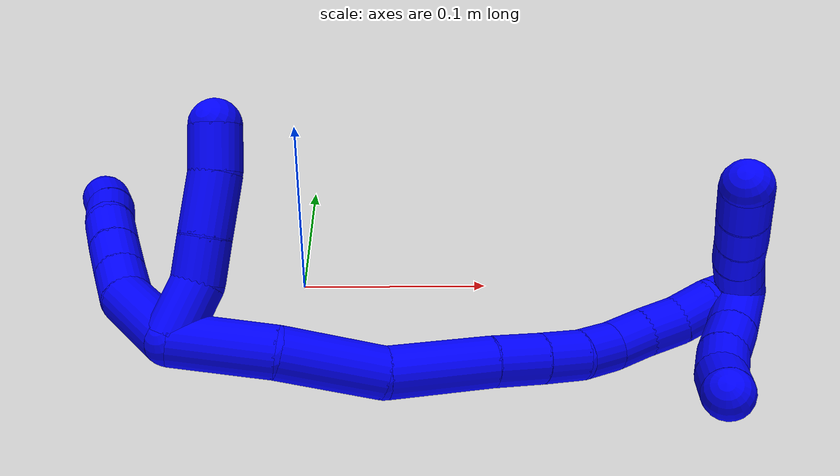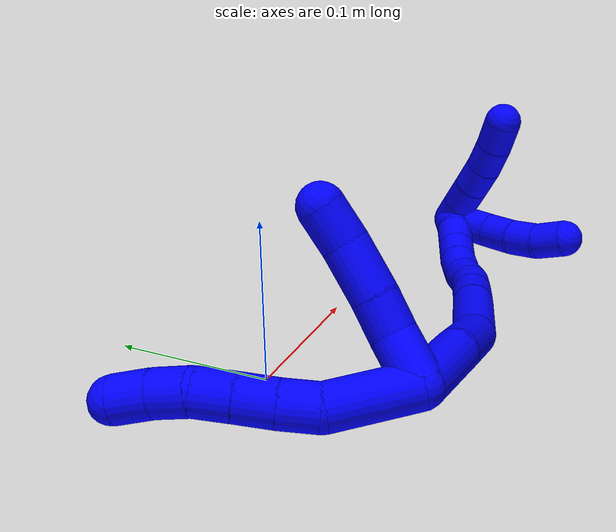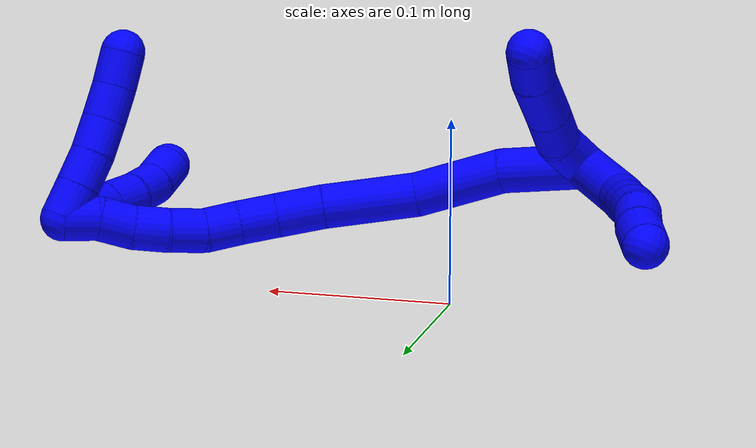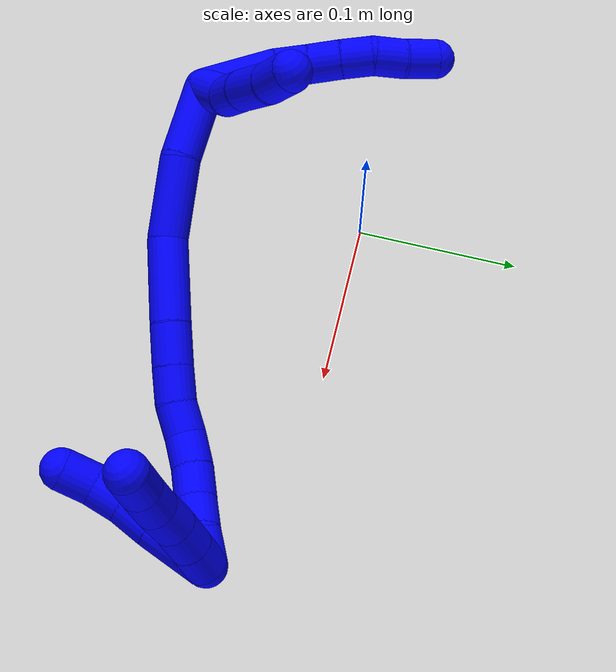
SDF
<sdf version="1.7">
 <world name="default">
  <model name="1">
   <static>0</static>
   <link name="1">
    <collision name="collision-cylinder-e_1_2_8">
     <pose>-0.019626 0.012046 -0.006758 -2.08207 -0.957559 1.45047</pose>
     <geometry><cylinder><radius>0.0125</radius><length>0.047998</length></cylinder></geometry>
     <surface>
      <friction><ode><mu>1.16</mu><mu2>1.16</mu2><slip1>0</slip1><slip2>0</slip2></ode></friction>
      <contact><ode><kp>1e+06</kp><kd>1</kd><max_vel>0</max_vel><min_depth>0.001</min_depth></ode></contact>
     </surface>
    </collision>
    <visual name="visual-cylinder-e_1_2_8">
     <pose>-0.019626 0.012046 -0.006758 -2.08207 -0.957559 1.45047</pose>
     <geometry><cylinder><radius>0.0125</radius><length>0.047998</length></cylinder></geometry>
     <material><ambient>0 0 1 1</ambient></material>
    </visual>
    <collision name="collision-cylinder-e_2_8_9">
     <pose>-0.045573 0.032121 -0.016127 -1.88521 -0.642572 0.859313</pose>
     <geometry><cylinder><radius>0.0125</radius><length>0.021095</length></cylinder></geometry>
     <surface>
      <friction><ode><mu>1.16</mu><mu2>1.16</mu2><slip1>0</slip1><slip2>0</slip2></ode></friction>
      <contact><ode><kp>1e+06</kp><kd>1</kd><max_vel>0</max_vel><min_depth>0.001</min_depth></ode></contact>
     </surface>
    </collision>
    <visual name="visual-cylinder-e_2_8_9">
     <pose>-0.045573 0.032121 -0.016127 -1.88521 -0.642572 0.859313</pose>
     <geometry><cylinder><radius>0.0125</radius><length>0.021095</length></cylinder></geometry>
     <material><ambient>0 0 1 1</ambient></material>
    </visual>
    <collision name="collision-cylinder-e_3_9_10">
     <pose>-0.057846 0.048271 -0.020825 -1.82235 -0.61745 0.780329</pose>
     <geometry><cylinder><radius>0.0125</radius><length>0.020564</length></cylinder></geometry>
     <surface>
      <friction><ode><mu>1.16</mu><mu2>1.16</mu2><slip1>0</slip1><slip2>0</slip2></ode></friction>
      <contact><ode><kp>1e+06</kp><kd>1</kd><max_vel>0</max_vel><min_depth>0.001</min_depth></ode></contact>
     </surface>
    </collision>
    <visual name="visual-cylinder-e_3_9_10">
     <pose>-0.057846 0.048271 -0.020825 -1.82235 -0.61745 0.780329</pose>
     <geometry><cylinder><radius>0.0125</radius><length>0.020564</length></cylinder></geometry>
     <material><ambient>0 0 1 1</ambient></material>
    </visual>
    <collision name="collision-cylinder-e_4_10_11">
     <pose>-0.06954 0.064354 -0.025323 -1.86475 -0.603991 0.794898</pose>
     <geometry><cylinder><radius>0.0125</radius><length>0.020218</length></cylinder></geometry>
     <surface>
      <friction><ode><mu>1.16</mu><mu2>1.16</mu2><slip1>0</slip1><slip2>0</slip2></ode></friction>
      <contact><ode><kp>1e+06</kp><kd>1</kd><max_vel>0</max_vel><min_depth>0.001</min_depth></ode></contact>
     </surface>
    </collision>
    <visual name="visual-cylinder-e_4_10_11">
     <pose>-0.06954 0.064354 -0.025323 -1.86475 -0.603991 0.794898</pose>
     <geometry><cylinder><radius>0.0125</radius><length>0.020218</length></cylinder></geometry>
     <material><ambient>0 0 1 1</ambient></material>
    </visual>
    <collision name="collision-cylinder-e_5_11_12">
     <pose>-0.08062 0.079215 -0.032629 -2.18802 -0.562962 1.02068</pose>
     <geometry><cylinder><radius>0.0125</radius><length>0.020005</length></cylinder></geometry>
     <surface>
      <friction><ode><mu>1.16</mu><mu2>1.16</mu2><slip1>0</slip1><slip2>0</slip2></ode></friction>
      <contact><ode><kp>1e+06</kp><kd>1</kd><max_vel>0</max_vel><min_depth>0.001</min_depth></ode></contact>
     </surface>
    </collision>
    <visual name="visual-cylinder-e_5_11_12">
     <pose>-0.08062 0.079215 -0.032629 -2.18802 -0.562962 1.02068</pose>
     <geometry><cylinder><radius>0.0125</radius><length>0.020005</length></cylinder></geometry>
     <material><ambient>0 0 1 1</ambient></material>
    </visual>
    <collision name="collision-cylinder-e_6_12_6">
     <pose>-0.092468 0.092179 -0.042218 -2.22928 -0.703804 1.28487</pose>
     <geometry><cylinder><radius>0.0125</radius><length>0.020121</length></cylinder></geometry>
     <surface>
      <friction><ode><mu>1.16</mu><mu2>1.16</mu2><slip1>0</slip1><slip2>0</slip2></ode></friction>
      <contact><ode><kp>1e+06</kp><kd>1</kd><max_vel>0</max_vel><min_depth>0.001</min_depth></ode></contact>
     </surface>
    </collision>
    <visual name="visual-cylinder-e_6_12_6">
     <pose>-0.092468 0.092179 -0.042218 -2.22928 -0.703804 1.28487</pose>
     <geometry><cylinder><radius>0.0125</radius><length>0.020121</length></cylinder></geometry>
     <material><ambient>0 0 1 1</ambient></material>
    </visual>
    <collision name="collision-cylinder-e_1_2_13">
     <pose>0.003785 0.01335 0.001779 -1.43835 0.273948 -0.24022</pose>
     <geometry><cylinder><radius>0.0125</radius><length>0.027979</length></cylinder></geometry>
     <surface>
      <friction><ode><mu>1.16</mu><mu2>1.16</mu2><slip1>0</slip1><slip2>0</slip2></ode></friction>
      <contact><ode><kp>1e+06</kp><kd>1</kd><max_vel>0</max_vel><min_depth>0.001</min_depth></ode></contact>
     </surface>
    </collision>
    <visual name="visual-cylinder-e_1_2_13">
     <pose>0.003785 0.01335 0.001779 -1.43835 0.273948 -0.24022</pose>
     <geometry><cylinder><radius>0.0125</radius><length>0.027979</length></cylinder></geometry>
     <material><ambient>0 0 1 1</ambient></material>
    </visual>
    <collision name="collision-cylinder-e_2_13_14">
     <pose>0.008698 0.036123 0.007957 -1.13397 0.108131 -0.06889</pose>
     <geometry><cylinder><radius>0.0125</radius><length>0.020921</length></cylinder></geometry>
     <surface>
      <friction><ode><mu>1.16</mu><mu2>1.16</mu2><slip1>0</slip1><slip2>0</slip2></ode></friction>
      <contact><ode><kp>1e+06</kp><kd>1</kd><max_vel>0</max_vel><min_depth>0.001</min_depth></ode></contact>
     </surface>
    </collision>
    <visual name="visual-cylinder-e_2_13_14">
     <pose>0.008698 0.036123 0.007957 -1.13397 0.108131 -0.06889</pose>
     <geometry><cylinder><radius>0.0125</radius><length>0.020921</length></cylinder></geometry>
     <material><ambient>0 0 1 1</ambient></material>
    </visual>
    <collision name="collision-cylinder-e_3_14_15">
     <pose>0.011041 0.059199 0.017707 -1.19732 0.082577 -0.056349</pose>
     <geometry><cylinder><radius>0.0125</radius><length>0.029427</length></cylinder></geometry>
     <surface>
      <friction><ode><mu>1.16</mu><mu2>1.16</mu2><slip1>0</slip1><slip2>0</slip2></ode></friction>
      <contact><ode><kp>1e+06</kp><kd>1</kd><max_vel>0</max_vel><min_depth>0.001</min_depth></ode></contact>
     </surface>
    </collision>
    <visual name="visual-cylinder-e_3_14_15">
     <pose>0.011041 0.059199 0.017707 -1.19732 0.082577 -0.056349</pose>
     <geometry><cylinder><radius>0.0125</radius><length>0.029427</length></cylinder></geometry>
     <material><ambient>0 0 1 1</ambient></material>
    </visual>
    <collision name="collision-cylinder-e_4_15_5">
     <pose>0.011607 0.082567 0.027811 -1.11568 -0.059829 0.037337</pose>
     <geometry><cylinder><radius>0.0125</radius><length>0.021672</length></cylinder></geometry>
     <surface>
      <friction><ode><mu>1.16</mu><mu2>1.16</mu2><slip1>0</slip1><slip2>0</slip2></ode></friction>
      <contact><ode><kp>1e+06</kp><kd>1</kd><max_vel>0</max_vel><min_depth>0.001</min_depth></ode></contact>
     </surface>
    </collision>
    <visual name="visual-cylinder-e_4_15_5">
     <pose>0.011607 0.082567 0.027811 -1.11568 -0.059829 0.037337</pose>
     <geometry><cylinder><radius>0.0125</radius><length>0.021672</length></cylinder></geometry>
     <material><ambient>0 0 1 1</ambient></material>
    </visual>
    <collision name="collision-cylinder-e_1_2_16">
     <pose>0.022118 0.002201 -0.008911 -2.89947 1.17742 -2.78114</pose>
     <geometry><cylinder><radius>0.0125</radius><length>0.047894</length></cylinder></geometry>
     <surface>
      <friction><ode><mu>1.16</mu><mu2>1.16</mu2><slip1>0</slip1><slip2>0</slip2></ode></friction>
      <contact><ode><kp>1e+06</kp><kd>1</kd><max_vel>0</max_vel><min_depth>0.001</min_depth></ode></contact>
     </surface>
    </collision>
    <visual name="visual-cylinder-e_1_2_16">
     <pose>0.022118 0.002201 -0.008911 -2.89947 1.17742 -2.78114</pose>
     <geometry><cylinder><radius>0.0125</radius><length>0.047894</length></cylinder></geometry>
     <material><ambient>0 0 1 1</ambient></material>
    </visual>
    <collision name="collision-cylinder-e_2_16_17">
     <pose>0.064743 0.006997 -0.032365 -2.96496 0.946539 -2.79916</pose>
     <geometry><cylinder><radius>0.0125</radius><length>0.050548</length></cylinder></geometry>
     <surface>
      <friction><ode><mu>1.16</mu><mu2>1.16</mu2><slip1>0</slip1><slip2>0</slip2></ode></friction>
      <contact><ode><kp>1e+06</kp><kd>1</kd><max_vel>0</max_vel><min_depth>0.001</min_depth></ode></contact>
     </surface>
    </collision>
    <visual name="visual-cylinder-e_2_16_17">
     <pose>0.064743 0.006997 -0.032365 -2.96496 0.946539 -2.79916</pose>
     <geometry><cylinder><radius>0.0125</radius><length>0.050548</length></cylinder></geometry>
     <material><ambient>0 0 1 1</ambient></material>
    </visual>
    <collision name="collision-cylinder-e_3_17_18">
     <pose>0.105816 0.019532 -0.060341 -2.5046 0.888444 -1.92988</pose>
     <geometry><cylinder><radius>0.0125</radius><length>0.052998</length></cylinder></geometry>
     <surface>
      <friction><ode><mu>1.16</mu><mu2>1.16</mu2><slip1>0</slip1><slip2>0</slip2></ode></friction>
      <contact><ode><kp>1e+06</kp><kd>1</kd><max_vel>0</max_vel><min_depth>0.001</min_depth></ode></contact>
     </surface>
    </collision>
    <visual name="visual-cylinder-e_3_17_18">
     <pose>0.105816 0.019532 -0.060341 -2.5046 0.888444 -1.92988</pose>
     <geometry><cylinder><radius>0.0125</radius><length>0.052998</length></cylinder></geometry>
     <material><ambient>0 0 1 1</ambient></material>
    </visual>
    <collision name="collision-cylinder-e_4_18_19">
     <pose>0.136218 0.034113 -0.081075 -2.57525 0.849449 -1.99811</pose>
     <geometry><cylinder><radius>0.0125</radius><length>0.026199</length></cylinder></geometry>
     <surface>
      <friction><ode><mu>1.16</mu><mu2>1.16</mu2><slip1>0</slip1><slip2>0</slip2></ode></friction>
      <contact><ode><kp>1e+06</kp><kd>1</kd><max_vel>0</max_vel><min_depth>0.001</min_depth></ode></contact>
     </surface>
    </collision>
    <visual name="visual-cylinder-e_4_18_19">
     <pose>0.136218 0.034113 -0.081075 -2.57525 0.849449 -1.99811</pose>
     <geometry><cylinder><radius>0.0125</radius><length>0.026199</length></cylinder></geometry>
     <material><ambient>0 0 1 1</ambient></material>
    </visual>
    <collision name="collision-cylinder-e_5_19_20">
     <pose>0.154133 0.04291 -0.094585 -2.55191 0.824357 -1.92741</pose>
     <geometry><cylinder><radius>0.0125</radius><length>0.022009</length></cylinder></geometry>
     <surface>
      <friction><ode><mu>1.16</mu><mu2>1.16</mu2><slip1>0</slip1><slip2>0</slip2></ode></friction>
      <contact><ode><kp>1e+06</kp><kd>1</kd><max_vel>0</max_vel><min_depth>0.001</min_depth></ode></contact>
     </surface>
    </collision>
    <visual name="visual-cylinder-e_5_19_20">
     <pose>0.154133 0.04291 -0.094585 -2.55191 0.824357 -1.92741</pose>
     <geometry><cylinder><radius>0.0125</radius><length>0.022009</length></cylinder></geometry>
     <material><ambient>0 0 1 1</ambient></material>
    </visual>
    <collision name="collision-cylinder-e_6_20_21">
     <pose>0.168259 0.052338 -0.106785 -2.41975 0.648548 -1.45513</pose>
     <geometry><cylinder><radius>0.0125</radius><length>0.020024</length></cylinder></geometry>
     <surface>
      <friction><ode><mu>1.16</mu><mu2>1.16</mu2><slip1>0</slip1><slip2>0</slip2></ode></friction>
      <contact><ode><kp>1e+06</kp><kd>1</kd><max_vel>0</max_vel><min_depth>0.001</min_depth></ode></contact>
     </surface>
    </collision>
    <visual name="visual-cylinder-e_6_20_21">
     <pose>0.168259 0.052338 -0.106785 -2.41975 0.648548 -1.45513</pose>
     <geometry><cylinder><radius>0.0125</radius><length>0.020024</length></cylinder></geometry>
     <material><ambient>0 0 1 1</ambient></material>
    </visual>
    <collision name="collision-cylinder-e_7_21_22">
     <pose>0.181335 0.063679 -0.116855 -2.16284 0.765565 -1.29468</pose>
     <geometry><cylinder><radius>0.0125</radius><length>0.020286</length></cylinder></geometry>
     <surface>
      <friction><ode><mu>1.16</mu><mu2>1.16</mu2><slip1>0</slip1><slip2>0</slip2></ode></friction>
      <contact><ode><kp>1e+06</kp><kd>1</kd><max_vel>0</max_vel><min_depth>0.001</min_depth></ode></contact>
     </surface>
    </collision>
    <visual name="visual-cylinder-e_7_21_22">
     <pose>0.181335 0.063679 -0.116855 -2.16284 0.765565 -1.29468</pose>
     <geometry><cylinder><radius>0.0125</radius><length>0.020286</length></cylinder></geometry>
     <material><ambient>0 0 1 1</ambient></material>
    </visual>
    <collision name="collision-cylinder-e_8_22_23">
     <pose>0.196063 0.075225 -0.124236 -2.11296 0.877717 -1.38638</pose>
     <geometry><cylinder><radius>0.0125</radius><length>0.020018</length></cylinder></geometry>
     <surface>
      <friction><ode><mu>1.16</mu><mu2>1.16</mu2><slip1>0</slip1><slip2>0</slip2></ode></friction>
      <contact><ode><kp>1e+06</kp><kd>1</kd><max_vel>0</max_vel><min_depth>0.001</min_depth></ode></contact>
     </surface>
    </collision>
    <visual name="visual-cylinder-e_8_22_23">
     <pose>0.196063 0.075225 -0.124236 -2.11296 0.877717 -1.38638</pose>
     <geometry><cylinder><radius>0.0125</radius><length>0.020018</length></cylinder></geometry>
     <material><ambient>0 0 1 1</ambient></material>
    </visual>
    <collision name="collision-cylinder-e_9_23_24">
     <pose>0.211321 0.08704 -0.129201 -1.82777 0.856551 -1.06904</pose>
     <geometry><cylinder><radius>0.0125</radius><length>0.020006</length></cylinder></geometry>
     <surface>
      <friction><ode><mu>1.16</mu><mu2>1.16</mu2><slip1>0</slip1><slip2>0</slip2></ode></friction>
      <contact><ode><kp>1e+06</kp><kd>1</kd><max_vel>0</max_vel><min_depth>0.001</min_depth></ode></contact>
     </surface>
    </collision>
    <visual name="visual-cylinder-e_9_23_24">
     <pose>0.211321 0.08704 -0.129201 -1.82777 0.856551 -1.06904</pose>
     <geometry><cylinder><radius>0.0125</radius><length>0.020006</length></cylinder></geometry>
     <material><ambient>0 0 1 1</ambient></material>
    </visual>
    <collision name="collision-cylinder-e_10_24_1">
     <pose>0.225914 0.099118 -0.135079 -2.20375 0.779327 -1.36236</pose>
     <geometry><cylinder><radius>0.0125</radius><length>0.020019</length></cylinder></geometry>
     <surface>
      <friction><ode><mu>1.16</mu><mu2>1.16</mu2><slip1>0</slip1><slip2>0</slip2></ode></friction>
      <contact><ode><kp>1e+06</kp><kd>1</kd><max_vel>0</max_vel><min_depth>0.001</min_depth></ode></contact>
     </surface>
    </collision>
    <visual name="visual-cylinder-e_10_24_1">
     <pose>0.225914 0.099118 -0.135079 -2.20375 0.779327 -1.36236</pose>
     <geometry><cylinder><radius>0.0125</radius><length>0.020019</length></cylinder></geometry>
     <material><ambient>0 0 1 1</ambient></material>
    </visual>
    <collision name="collision-cylinder-e_1_1_25">
     <pose>0.232063 0.088782 -0.1293 1.0148 -0.046752 -0.025995</pose>
     <geometry><cylinder><radius>0.0125</radius><length>0.037899</length></cylinder></geometry>
     <surface>
      <friction><ode><mu>1.16</mu><mu2>1.16</mu2><slip1>0</slip1><slip2>0</slip2></ode></friction>
      <contact><ode><kp>1e+06</kp><kd>1</kd><max_vel>0</max_vel><min_depth>0.001</min_depth></ode></contact>
     </surface>
    </collision>
    <visual name="visual-cylinder-e_1_1_25">
     <pose>0.232063 0.088782 -0.1293 1.0148 -0.046752 -0.025995</pose>
     <geometry><cylinder><radius>0.0125</radius><length>0.037899</length></cylinder></geometry>
     <material><ambient>0 0 1 1</ambient></material>
    </visual>
    <collision name="collision-cylinder-e_2_25_26">
     <pose>0.23016 0.063936 -0.113168 0.959771 -0.094725 -0.049328</pose>
     <geometry><cylinder><radius>0.0125</radius><length>0.021508</length></cylinder></geometry>
     <surface>
      <friction><ode><mu>1.16</mu><mu2>1.16</mu2><slip1>0</slip1><slip2>0</slip2></ode></friction>
      <contact><ode><kp>1e+06</kp><kd>1</kd><max_vel>0</max_vel><min_depth>0.001</min_depth></ode></contact>
     </surface>
    </collision>
    <visual name="visual-cylinder-e_2_25_26">
     <pose>0.23016 0.063936 -0.113168 0.959771 -0.094725 -0.049328</pose>
     <geometry><cylinder><radius>0.0125</radius><length>0.021508</length></cylinder></geometry>
     <material><ambient>0 0 1 1</ambient></material>
    </visual>
    <collision name="collision-cylinder-e_3_26_27">
     <pose>0.229624 0.047153 -0.101038 0.929133 0.048044 0.02408</pose>
     <geometry><cylinder><radius>0.0125</radius><length>0.020031</length></cylinder></geometry>
     <surface>
      <friction><ode><mu>1.16</mu><mu2>1.16</mu2><slip1>0</slip1><slip2>0</slip2></ode></friction>
      <contact><ode><kp>1e+06</kp><kd>1</kd><max_vel>0</max_vel><min_depth>0.001</min_depth></ode></contact>
     </surface>
    </collision>
    <visual name="visual-cylinder-e_3_26_27">
     <pose>0.229624 0.047153 -0.101038 0.929133 0.048044 0.02408</pose>
     <geometry><cylinder><radius>0.0125</radius><length>0.020031</length></cylinder></geometry>
     <material><ambient>0 0 1 1</ambient></material>
    </visual>
    <collision name="collision-cylinder-e_4_27_4">
     <pose>0.232363 0.032309 -0.087705 0.748964 0.221459 0.087342</pose>
     <geometry><cylinder><radius>0.0125</radius><length>0.020562</length></cylinder></geometry>
     <surface>
      <friction><ode><mu>1.16</mu><mu2>1.16</mu2><slip1>0</slip1><slip2>0</slip2></ode></friction>
      <contact><ode><kp>1e+06</kp><kd>1</kd><max_vel>0</max_vel><min_depth>0.001</min_depth></ode></contact>
     </surface>
    </collision>
    <visual name="visual-cylinder-e_4_27_4">
     <pose>0.232363 0.032309 -0.087705 0.748964 0.221459 0.087342</pose>
     <geometry><cylinder><radius>0.0125</radius><length>0.020562</length></cylinder></geometry>
     <material><ambient>0 0 1 1</ambient></material>
    </visual>
    <collision name="collision-cylinder-e_1_1_28">
     <pose>0.232994 0.104412 -0.129301 0.044716 0.004532 0.000101</pose>
     <geometry><cylinder><radius>0.0125</radius><length>0.02</length></cylinder></geometry>
     <surface>
      <friction><ode><mu>1.16</mu><mu2>1.16</mu2><slip1>0</slip1><slip2>0</slip2></ode></friction>
      <contact><ode><kp>1e+06</kp><kd>1</kd><max_vel>0</max_vel><min_depth>0.001</min_depth></ode></contact>
     </surface>
    </collision>
    <visual name="visual-cylinder-e_1_1_28">
     <pose>0.232994 0.104412 -0.129301 0.044716 0.004532 0.000101</pose>
     <geometry><cylinder><radius>0.0125</radius><length>0.02</length></cylinder></geometry>
     <material><ambient>0 0 1 1</ambient></material>
    </visual>
    <collision name="collision-cylinder-e_2_28_29">
     <pose>0.233223 0.103511 -0.109323 0.045418 0.018371 0.000417</pose>
     <geometry><cylinder><radius>0.0125</radius><length>0.02</length></cylinder></geometry>
     <surface>
      <friction><ode><mu>1.16</mu><mu2>1.16</mu2><slip1>0</slip1><slip2>0</slip2></ode></friction>
      <contact><ode><kp>1e+06</kp><kd>1</kd><max_vel>0</max_vel><min_depth>0.001</min_depth></ode></contact>
     </surface>
    </collision>
    <visual name="visual-cylinder-e_2_28_29">
     <pose>0.233223 0.103511 -0.109323 0.045418 0.018371 0.000417</pose>
     <geometry><cylinder><radius>0.0125</radius><length>0.02</length></cylinder></geometry>
     <material><ambient>0 0 1 1</ambient></material>
    </visual>
    <collision name="collision-cylinder-e_3_29_30">
     <pose>0.234532 0.102998 -0.089398 0.006012 0.112826 0.00034</pose>
     <geometry><cylinder><radius>0.0125</radius><length>0.02</length></cylinder></geometry>
     <surface>
      <friction><ode><mu>1.16</mu><mu2>1.16</mu2><slip1>0</slip1><slip2>0</slip2></ode></friction>
      <contact><ode><kp>1e+06</kp><kd>1</kd><max_vel>0</max_vel><min_depth>0.001</min_depth></ode></contact>
     </surface>
    </collision>
    <visual name="visual-cylinder-e_3_29_30">
     <pose>0.234532 0.102998 -0.089398 0.006012 0.112826 0.00034</pose>
     <geometry><cylinder><radius>0.0125</radius><length>0.02</length></cylinder></geometry>
     <material><ambient>0 0 1 1</ambient></material>
    </visual>
    <collision name="collision-cylinder-e_4_30_31">
     <pose>0.236442 0.1038 -0.06953 -0.086608 0.078446 -0.003401</pose>
     <geometry><cylinder><radius>0.0125</radius><length>0.02</length></cylinder></geometry>
     <surface>
      <friction><ode><mu>1.16</mu><mu2>1.16</mu2><slip1>0</slip1><slip2>0</slip2></ode></friction>
      <contact><ode><kp>1e+06</kp><kd>1</kd><max_vel>0</max_vel><min_depth>0.001</min_depth></ode></contact>
     </surface>
    </collision>
    <visual name="visual-cylinder-e_4_30_31">
     <pose>0.236442 0.1038 -0.06953 -0.086608 0.078446 -0.003401</pose>
     <geometry><cylinder><radius>0.0125</radius><length>0.02</length></cylinder></geometry>
     <material><ambient>0 0 1 1</ambient></material>
    </visual>
    <collision name="collision-cylinder-e_5_31_3">
     <pose>0.238129 0.106392 -0.049791 -0.174582 0.090479 -0.007923</pose>
     <geometry><cylinder><radius>0.0125</radius><length>0.02</length></cylinder></geometry>
     <surface>
      <friction><ode><mu>1.16</mu><mu2>1.16</mu2><slip1>0</slip1><slip2>0</slip2></ode></friction>
      <contact><ode><kp>1e+06</kp><kd>1</kd><max_vel>0</max_vel><min_depth>0.001</min_depth></ode></contact>
     </surface>
    </collision>
    <visual name="visual-cylinder-e_5_31_3">
     <pose>0.238129 0.106392 -0.049791 -0.174582 0.090479 -0.007923</pose>
     <geometry><cylinder><radius>0.0125</radius><length>0.02</length></cylinder></geometry>
     <material><ambient>0 0 1 1</ambient></material>
    </visual>
    <collision name="collision-sphere-3">
     <pose>0.239033 0.108122 -0.039983 0 -0 0</pose>
     <geometry><sphere><radius>0.0125</radius></sphere></geometry>
     <surface>
      <friction><ode><mu>1.16</mu><mu2>1.16</mu2><slip1>0</slip1><slip2>0</slip2></ode></friction>
      <contact><ode><kp>1e+06</kp><kd>1</kd><max_vel>0</max_vel><min_depth>0.001</min_depth></ode></contact>
     </surface>
    </collision>
    <visual name="visual-sphere-3">
     <pose>0.239033 0.108122 -0.039983 0 -0 0</pose>
     <geometry><sphere><radius>0.0125</radius></sphere></geometry>
     <material><ambient>0 0 1 1</ambient></material>
    </visual>
    <collision name="collision-sphere-31">
     <pose>0.237226 0.104663 -0.059598 0 -0 0</pose>
     <geometry><sphere><radius>0.0125</radius></sphere></geometry>
     <surface>
      <friction><ode><mu>1.16</mu><mu2>1.16</mu2><slip1>0</slip1><slip2>0</slip2></ode></friction>
      <contact><ode><kp>1e+06</kp><kd>1</kd><max_vel>0</max_vel><min_depth>0.001</min_depth></ode></contact>
     </surface>
    </collision>
    <visual name="visual-sphere-31">
     <pose>0.237226 0.104663 -0.059598 0 -0 0</pose>
     <geometry><sphere><radius>0.0125</radius></sphere></geometry>
     <material><ambient>0 0 1 1</ambient></material>
    </visual>
    <collision name="collision-sphere-30">
     <pose>0.235658 0.102938 -0.079462 0 -0 0</pose>
     <geometry><sphere><radius>0.0125</radius></sphere></geometry>
     <surface>
      <friction><ode><mu>1.16</mu><mu2>1.16</mu2><slip1>0</slip1><slip2>0</slip2></ode></friction>
      <contact><ode><kp>1e+06</kp><kd>1</kd><max_vel>0</max_vel><min_depth>0.001</min_depth></ode></contact>
     </surface>
    </collision>
    <visual name="visual-sphere-30">
     <pose>0.235658 0.102938 -0.079462 0 -0 0</pose>
     <geometry><sphere><radius>0.0125</radius></sphere></geometry>
     <material><ambient>0 0 1 1</ambient></material>
    </visual>
    <collision name="collision-sphere-29">
     <pose>0.233407 0.103057 -0.099335 0 -0 0</pose>
     <geometry><sphere><radius>0.0125</radius></sphere></geometry>
     <surface>
      <friction><ode><mu>1.16</mu><mu2>1.16</mu2><slip1>0</slip1><slip2>0</slip2></ode></friction>
      <contact><ode><kp>1e+06</kp><kd>1</kd><max_vel>0</max_vel><min_depth>0.001</min_depth></ode></contact>
     </surface>
    </collision>
    <visual name="visual-sphere-29">
     <pose>0.233407 0.103057 -0.099335 0 -0 0</pose>
     <geometry><sphere><radius>0.0125</radius></sphere></geometry>
     <material><ambient>0 0 1 1</ambient></material>
    </visual>
    <collision name="collision-sphere-28">
     <pose>0.233039 0.103965 -0.119311 0 -0 0</pose>
     <geometry><sphere><radius>0.0125</radius></sphere></geometry>
     <surface>
      <friction><ode><mu>1.16</mu><mu2>1.16</mu2><slip1>0</slip1><slip2>0</slip2></ode></friction>
      <contact><ode><kp>1e+06</kp><kd>1</kd><max_vel>0</max_vel><min_depth>0.001</min_depth></ode></contact>
     </surface>
    </collision>
    <visual name="visual-sphere-28">
     <pose>0.233039 0.103965 -0.119311 0 -0 0</pose>
     <geometry><sphere><radius>0.0125</radius></sphere></geometry>
     <material><ambient>0 0 1 1</ambient></material>
    </visual>
    <collision name="collision-sphere-4">
     <pose>0.234622 0.02548 -0.080359 0 -0 0</pose>
     <geometry><sphere><radius>0.0125</radius></sphere></geometry>
     <surface>
      <friction><ode><mu>1.16</mu><mu2>1.16</mu2><slip1>0</slip1><slip2>0</slip2></ode></friction>
      <contact><ode><kp>1e+06</kp><kd>1</kd><max_vel>0</max_vel><min_depth>0.001</min_depth></ode></contact>
     </surface>
    </collision>
    <visual name="visual-sphere-4">
     <pose>0.234622 0.02548 -0.080359 0 -0 0</pose>
     <geometry><sphere><radius>0.0125</radius></sphere></geometry>
     <material><ambient>0 0 1 1</ambient></material>
    </visual>
    <collision name="collision-sphere-27">
     <pose>0.230105 0.039139 -0.095051 0 -0 0</pose>
     <geometry><sphere><radius>0.0125</radius></sphere></geometry>
     <surface>
      <friction><ode><mu>1.16</mu><mu2>1.16</mu2><slip1>0</slip1><slip2>0</slip2></ode></friction>
      <contact><ode><kp>1e+06</kp><kd>1</kd><max_vel>0</max_vel><min_depth>0.001</min_depth></ode></contact>
     </surface>
    </collision>
    <visual name="visual-sphere-27">
     <pose>0.230105 0.039139 -0.095051 0 -0 0</pose>
     <geometry><sphere><radius>0.0125</radius></sphere></geometry>
     <material><ambient>0 0 1 1</ambient></material>
    </visual>
    <collision name="collision-sphere-26">
     <pose>0.229143 0.055167 -0.107026 0 -0 0</pose>
     <geometry><sphere><radius>0.0125</radius></sphere></geometry>
     <surface>
      <friction><ode><mu>1.16</mu><mu2>1.16</mu2><slip1>0</slip1><slip2>0</slip2></ode></friction>
      <contact><ode><kp>1e+06</kp><kd>1</kd><max_vel>0</max_vel><min_depth>0.001</min_depth></ode></contact>
     </surface>
    </collision>
    <visual name="visual-sphere-26">
     <pose>0.229143 0.055167 -0.107026 0 -0 0</pose>
     <geometry><sphere><radius>0.0125</radius></sphere></geometry>
     <material><ambient>0 0 1 1</ambient></material>
    </visual>
    <collision name="collision-sphere-25">
     <pose>0.231177 0.072704 -0.11931 0 -0 0</pose>
     <geometry><sphere><radius>0.0125</radius></sphere></geometry>
     <surface>
      <friction><ode><mu>1.16</mu><mu2>1.16</mu2><slip1>0</slip1><slip2>0</slip2></ode></friction>
      <contact><ode><kp>1e+06</kp><kd>1</kd><max_vel>0</max_vel><min_depth>0.001</min_depth></ode></contact>
     </surface>
    </collision>
    <visual name="visual-sphere-25">
     <pose>0.231177 0.072704 -0.11931 0 -0 0</pose>
     <geometry><sphere><radius>0.0125</radius></sphere></geometry>
     <material><ambient>0 0 1 1</ambient></material>
    </visual>
    <collision name="collision-sphere-1">
     <pose>0.232949 0.104859 -0.139291 0 -0 0</pose>
     <geometry><sphere><radius>0.0125</radius></sphere></geometry>
     <surface>
      <friction><ode><mu>1.16</mu><mu2>1.16</mu2><slip1>0</slip1><slip2>0</slip2></ode></friction>
      <contact><ode><kp>1e+06</kp><kd>1</kd><max_vel>0</max_vel><min_depth>0.001</min_depth></ode></contact>
     </surface>
    </collision>
    <visual name="visual-sphere-1">
     <pose>0.232949 0.104859 -0.139291 0 -0 0</pose>
     <geometry><sphere><radius>0.0125</radius></sphere></geometry>
     <material><ambient>0 0 1 1</ambient></material>
    </visual>
    <collision name="collision-sphere-24">
     <pose>0.218879 0.093377 -0.130867 0 -0 0</pose>
     <geometry><sphere><radius>0.0125</radius></sphere></geometry>
     <surface>
      <friction><ode><mu>1.16</mu><mu2>1.16</mu2><slip1>0</slip1><slip2>0</slip2></ode></friction>
      <contact><ode><kp>1e+06</kp><kd>1</kd><max_vel>0</max_vel><min_depth>0.001</min_depth></ode></contact>
     </surface>
    </collision>
    <visual name="visual-sphere-24">
     <pose>0.218879 0.093377 -0.130867 0 -0 0</pose>
     <geometry><sphere><radius>0.0125</radius></sphere></geometry>
     <material><ambient>0 0 1 1</ambient></material>
    </visual>
    <collision name="collision-sphere-23">
     <pose>0.203763 0.080703 -0.127536 0 -0 0</pose>
     <geometry><sphere><radius>0.0125</radius></sphere></geometry>
     <surface>
      <friction><ode><mu>1.16</mu><mu2>1.16</mu2><slip1>0</slip1><slip2>0</slip2></ode></friction>
      <contact><ode><kp>1e+06</kp><kd>1</kd><max_vel>0</max_vel><min_depth>0.001</min_depth></ode></contact>
     </surface>
    </collision>
    <visual name="visual-sphere-23">
     <pose>0.203763 0.080703 -0.127536 0 -0 0</pose>
     <geometry><sphere><radius>0.0125</radius></sphere></geometry>
     <material><ambient>0 0 1 1</ambient></material>
    </visual>
    <collision name="collision-sphere-22">
     <pose>0.188364 0.069747 -0.120936 0 -0 0</pose>
     <geometry><sphere><radius>0.0125</radius></sphere></geometry>
     <surface>
      <friction><ode><mu>1.16</mu><mu2>1.16</mu2><slip1>0</slip1><slip2>0</slip2></ode></friction>
      <contact><ode><kp>1e+06</kp><kd>1</kd><max_vel>0</max_vel><min_depth>0.001</min_depth></ode></contact>
     </surface>
    </collision>
    <visual name="visual-sphere-22">
     <pose>0.188364 0.069747 -0.120936 0 -0 0</pose>
     <geometry><sphere><radius>0.0125</radius></sphere></geometry>
     <material><ambient>0 0 1 1</ambient></material>
    </visual>
    <collision name="collision-sphere-21">
     <pose>0.174306 0.05761 -0.112774 0 -0 0</pose>
     <geometry><sphere><radius>0.0125</radius></sphere></geometry>
     <surface>
      <friction><ode><mu>1.16</mu><mu2>1.16</mu2><slip1>0</slip1><slip2>0</slip2></ode></friction>
      <contact><ode><kp>1e+06</kp><kd>1</kd><max_vel>0</max_vel><min_depth>0.001</min_depth></ode></contact>
     </surface>
    </collision>
    <visual name="visual-sphere-21">
     <pose>0.174306 0.05761 -0.112774 0 -0 0</pose>
     <geometry><sphere><radius>0.0125</radius></sphere></geometry>
     <material><ambient>0 0 1 1</ambient></material>
    </visual>
    <collision name="collision-sphere-12">
     <pose>-0.085958 0.086113 -0.037525 0 -0 0</pose>
     <geometry><sphere><radius>0.0125</radius></sphere></geometry>
     <surface>
      <friction><ode><mu>1.16</mu><mu2>1.16</mu2><slip1>0</slip1><slip2>0</slip2></ode></friction>
      <contact><ode><kp>1e+06</kp><kd>1</kd><max_vel>0</max_vel><min_depth>0.001</min_depth></ode></contact>
     </surface>
    </collision>
    <visual name="visual-sphere-12">
     <pose>-0.085958 0.086113 -0.037525 0 -0 0</pose>
     <geometry><sphere><radius>0.0125</radius></sphere></geometry>
     <material><ambient>0 0 1 1</ambient></material>
    </visual>
    <collision name="collision-sphere-11">
     <pose>-0.075281 0.072317 -0.027733 0 -0 0</pose>
     <geometry><sphere><radius>0.0125</radius></sphere></geometry>
     <surface>
      <friction><ode><mu>1.16</mu><mu2>1.16</mu2><slip1>0</slip1><slip2>0</slip2></ode></friction>
      <contact><ode><kp>1e+06</kp><kd>1</kd><max_vel>0</max_vel><min_depth>0.001</min_depth></ode></contact>
     </surface>
    </collision>
    <visual name="visual-sphere-11">
     <pose>-0.075281 0.072317 -0.027733 0 -0 0</pose>
     <geometry><sphere><radius>0.0125</radius></sphere></geometry>
     <material><ambient>0 0 1 1</ambient></material>
    </visual>
    <collision name="collision-sphere-10">
     <pose>-0.063799 0.05639 -0.022912 0 -0 0</pose>
     <geometry><sphere><radius>0.0125</radius></sphere></geometry>
     <surface>
      <friction><ode><mu>1.16</mu><mu2>1.16</mu2><slip1>0</slip1><slip2>0</slip2></ode></friction>
      <contact><ode><kp>1e+06</kp><kd>1</kd><max_vel>0</max_vel><min_depth>0.001</min_depth></ode></contact>
     </surface>
    </collision>
    <visual name="visual-sphere-10">
     <pose>-0.063799 0.05639 -0.022912 0 -0 0</pose>
     <geometry><sphere><radius>0.0125</radius></sphere></geometry>
     <material><ambient>0 0 1 1</ambient></material>
    </visual>
    <collision name="collision-sphere-9">
     <pose>-0.051894 0.040151 -0.018738 0 -0 0</pose>
     <geometry><sphere><radius>0.0125</radius></sphere></geometry>
     <surface>
      <friction><ode><mu>1.16</mu><mu2>1.16</mu2><slip1>0</slip1><slip2>0</slip2></ode></friction>
      <contact><ode><kp>1e+06</kp><kd>1</kd><max_vel>0</max_vel><min_depth>0.001</min_depth></ode></contact>
     </surface>
    </collision>
    <visual name="visual-sphere-9">
     <pose>-0.051894 0.040151 -0.018738 0 -0 0</pose>
     <geometry><sphere><radius>0.0125</radius></sphere></geometry>
     <material><ambient>0 0 1 1</ambient></material>
    </visual>
    <collision name="collision-sphere-2">
     <geometry><sphere><radius>0.0125</radius></sphere></geometry>
     <surface>
      <friction><ode><mu>1.16</mu><mu2>1.16</mu2><slip1>0</slip1><slip2>0</slip2></ode></friction>
      <contact><ode><kp>1e+06</kp><kd>1</kd><max_vel>0</max_vel><min_depth>0.001</min_depth></ode></contact>
     </surface>
    </collision>
    <visual name="visual-sphere-2">
     <geometry><sphere><radius>0.0125</radius></sphere></geometry>
     <material><ambient>0 0 1 1</ambient></material>
    </visual>
    <collision name="collision-sphere-19">
     <pose>0.146054 0.038754 -0.088375 0 -0 0</pose>
     <geometry><sphere><radius>0.0125</radius></sphere></geometry>
     <surface>
      <friction><ode><mu>1.16</mu><mu2>1.16</mu2><slip1>0</slip1><slip2>0</slip2></ode></friction>
      <contact><ode><kp>1e+06</kp><kd>1</kd><max_vel>0</max_vel><min_depth>0.001</min_depth></ode></contact>
     </surface>
    </collision>
    <visual name="visual-sphere-19">
     <pose>0.146054 0.038754 -0.088375 0 -0 0</pose>
     <geometry><sphere><radius>0.0125</radius></sphere></geometry>
     <material><ambient>0 0 1 1</ambient></material>
    </visual>
    <collision name="collision-sphere-8">
     <pose>-0.039253 0.024091 -0.013516 0 -0 0</pose>
     <geometry><sphere><radius>0.0125</radius></sphere></geometry>
     <surface>
      <friction><ode><mu>1.16</mu><mu2>1.16</mu2><slip1>0</slip1><slip2>0</slip2></ode></friction>
      <contact><ode><kp>1e+06</kp><kd>1</kd><max_vel>0</max_vel><min_depth>0.001</min_depth></ode></contact>
     </surface>
    </collision>
    <visual name="visual-sphere-8">
     <pose>-0.039253 0.024091 -0.013516 0 -0 0</pose>
     <geometry><sphere><radius>0.0125</radius></sphere></geometry>
     <material><ambient>0 0 1 1</ambient></material>
    </visual>
    <collision name="collision-sphere-6">
     <pose>-0.098978 0.098246 -0.046911 0 -0 0</pose>
     <geometry><sphere><radius>0.0125</radius></sphere></geometry>
     <surface>
      <friction><ode><mu>1.16</mu><mu2>1.16</mu2><slip1>0</slip1><slip2>0</slip2></ode></friction>
      <contact><ode><kp>1e+06</kp><kd>1</kd><max_vel>0</max_vel><min_depth>0.001</min_depth></ode></contact>
     </surface>
    </collision>
    <visual name="visual-sphere-6">
     <pose>-0.098978 0.098246 -0.046911 0 -0 0</pose>
     <geometry><sphere><radius>0.0125</radius></sphere></geometry>
     <material><ambient>0 0 1 1</ambient></material>
    </visual>
    <collision name="collision-sphere-13">
     <pose>0.007569 0.0267 0.003557 0 -0 0</pose>
     <geometry><sphere><radius>0.0125</radius></sphere></geometry>
     <surface>
      <friction><ode><mu>1.16</mu><mu2>1.16</mu2><slip1>0</slip1><slip2>0</slip2></ode></friction>
      <contact><ode><kp>1e+06</kp><kd>1</kd><max_vel>0</max_vel><min_depth>0.001</min_depth></ode></contact>
     </surface>
    </collision>
    <visual name="visual-sphere-13">
     <pose>0.007569 0.0267 0.003557 0 -0 0</pose>
     <geometry><sphere><radius>0.0125</radius></sphere></geometry>
     <material><ambient>0 0 1 1</ambient></material>
    </visual>
    <collision name="collision-sphere-14">
     <pose>0.009827 0.045546 0.012357 0 -0 0</pose>
     <geometry><sphere><radius>0.0125</radius></sphere></geometry>
     <surface>
      <friction><ode><mu>1.16</mu><mu2>1.16</mu2><slip1>0</slip1><slip2>0</slip2></ode></friction>
      <contact><ode><kp>1e+06</kp><kd>1</kd><max_vel>0</max_vel><min_depth>0.001</min_depth></ode></contact>
     </surface>
    </collision>
    <visual name="visual-sphere-14">
     <pose>0.009827 0.045546 0.012357 0 -0 0</pose>
     <geometry><sphere><radius>0.0125</radius></sphere></geometry>
     <material><ambient>0 0 1 1</ambient></material>
    </visual>
    <collision name="collision-sphere-15">
     <pose>0.012254 0.072852 0.023057 0 -0 0</pose>
     <geometry><sphere><radius>0.0125</radius></sphere></geometry>
     <surface>
      <friction><ode><mu>1.16</mu><mu2>1.16</mu2><slip1>0</slip1><slip2>0</slip2></ode></friction>
      <contact><ode><kp>1e+06</kp><kd>1</kd><max_vel>0</max_vel><min_depth>0.001</min_depth></ode></contact>
     </surface>
    </collision>
    <visual name="visual-sphere-15">
     <pose>0.012254 0.072852 0.023057 0 -0 0</pose>
     <geometry><sphere><radius>0.0125</radius></sphere></geometry>
     <material><ambient>0 0 1 1</ambient></material>
    </visual>
    <collision name="collision-sphere-5">
     <pose>0.010959 0.092283 0.032566 0 -0 0</pose>
     <geometry><sphere><radius>0.0125</radius></sphere></geometry>
     <surface>
      <friction><ode><mu>1.16</mu><mu2>1.16</mu2><slip1>0</slip1><slip2>0</slip2></ode></friction>
      <contact><ode><kp>1e+06</kp><kd>1</kd><max_vel>0</max_vel><min_depth>0.001</min_depth></ode></contact>
     </surface>
    </collision>
    <visual name="visual-sphere-5">
     <pose>0.010959 0.092283 0.032566 0 -0 0</pose>
     <geometry><sphere><radius>0.0125</radius></sphere></geometry>
     <material><ambient>0 0 1 1</ambient></material>
    </visual>
    <collision name="collision-sphere-16">
     <pose>0.044236 0.004402 -0.017823 0 -0 0</pose>
     <geometry><sphere><radius>0.0125</radius></sphere></geometry>
     <surface>
      <friction><ode><mu>1.16</mu><mu2>1.16</mu2><slip1>0</slip1><slip2>0</slip2></ode></friction>
      <contact><ode><kp>1e+06</kp><kd>1</kd><max_vel>0</max_vel><min_depth>0.001</min_depth></ode></contact>
     </surface>
    </collision>
    <visual name="visual-sphere-16">
     <pose>0.044236 0.004402 -0.017823 0 -0 0</pose>
     <geometry><sphere><radius>0.0125</radius></sphere></geometry>
     <material><ambient>0 0 1 1</ambient></material>
    </visual>
    <collision name="collision-sphere-17">
     <pose>0.08525 0.009593 -0.046908 0 -0 0</pose>
     <geometry><sphere><radius>0.0125</radius></sphere></geometry>
     <surface>
      <friction><ode><mu>1.16</mu><mu2>1.16</mu2><slip1>0</slip1><slip2>0</slip2></ode></friction>
      <contact><ode><kp>1e+06</kp><kd>1</kd><max_vel>0</max_vel><min_depth>0.001</min_depth></ode></contact>
     </surface>
    </collision>
    <visual name="visual-sphere-17">
     <pose>0.08525 0.009593 -0.046908 0 -0 0</pose>
     <geometry><sphere><radius>0.0125</radius></sphere></geometry>
     <material><ambient>0 0 1 1</ambient></material>
    </visual>
    <collision name="collision-sphere-18">
     <pose>0.126381 0.029471 -0.073775 0 -0 0</pose>
     <geometry><sphere><radius>0.0125</radius></sphere></geometry>
     <surface>
      <friction><ode><mu>1.16</mu><mu2>1.16</mu2><slip1>0</slip1><slip2>0</slip2></ode></friction>
      <contact><ode><kp>1e+06</kp><kd>1</kd><max_vel>0</max_vel><min_depth>0.001</min_depth></ode></contact>
     </surface>
    </collision>
    <visual name="visual-sphere-18">
     <pose>0.126381 0.029471 -0.073775 0 -0 0</pose>
     <geometry><sphere><radius>0.0125</radius></sphere></geometry>
     <material><ambient>0 0 1 1</ambient></material>
    </visual>
    <collision name="collision-sphere-20">
     <pose>0.162211 0.047065 -0.100796 0 -0 0</pose>
     <geometry><sphere><radius>0.0125</radius></sphere></geometry>
     <surface>
      <friction><ode><mu>1.16</mu><mu2>1.16</mu2><slip1>0</slip1><slip2>0</slip2></ode></friction>
      <contact><ode><kp>1e+06</kp><kd>1</kd><max_vel>0</max_vel><min_depth>0.001</min_depth></ode></contact>
     </surface>
    </collision>
    <visual name="visual-sphere-20">
     <pose>0.162211 0.047065 -0.100796 0 -0 0</pose>
     <geometry><sphere><radius>0.0125</radius></sphere></geometry>
     <material><ambient>0 0 1 1</ambient></material>
    </visual>
    <inertial>
     <pose>0.101527 0.052432 -0.058169 0 -0 0</pose>
     <mass>0.75</mass>
     <inertia><ixx>1.9e-05</ixx><ixy>0</ixy><ixz>0</ixz><iyy>7.2e-05</iyy><iyz>0</iyz><izz>-5.3e-05</izz></inertia>
    </inertial>
   </link>
   <pose>-0.049302 -0.112129 0.052681 0.522749 -0.160931 -0.325877</pose>
  </model>
 </world>
</sdf>
